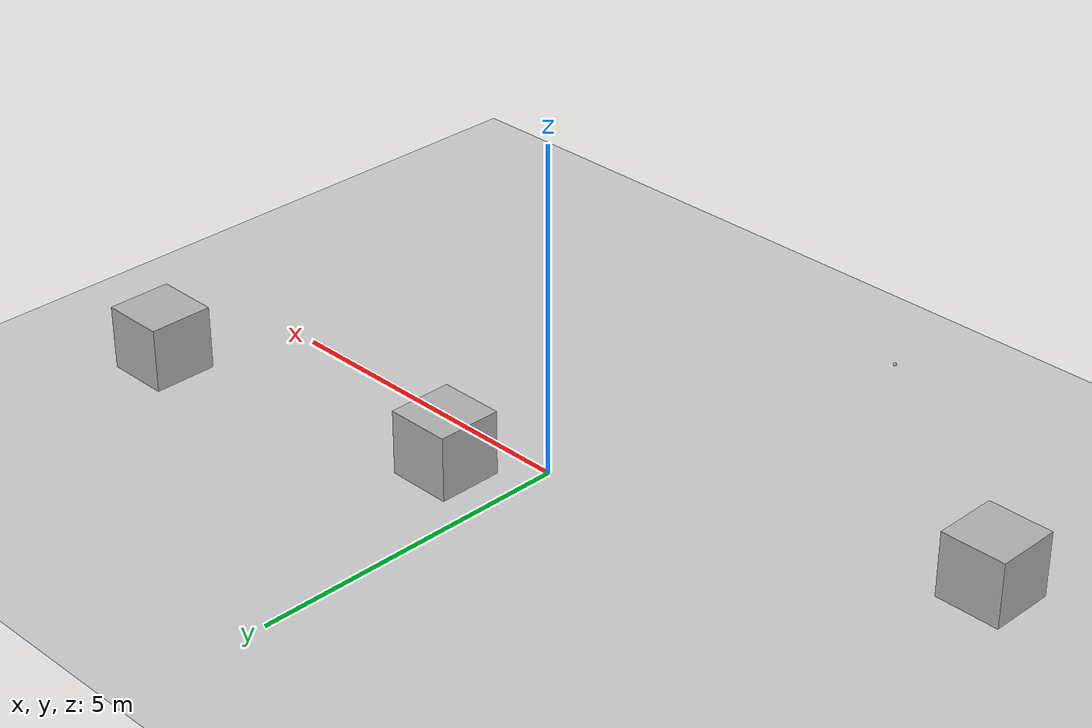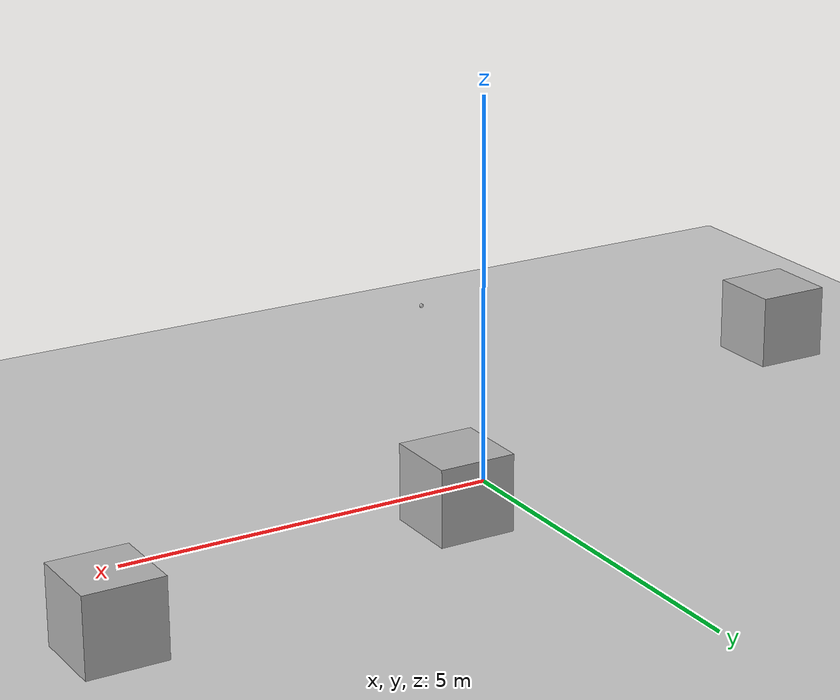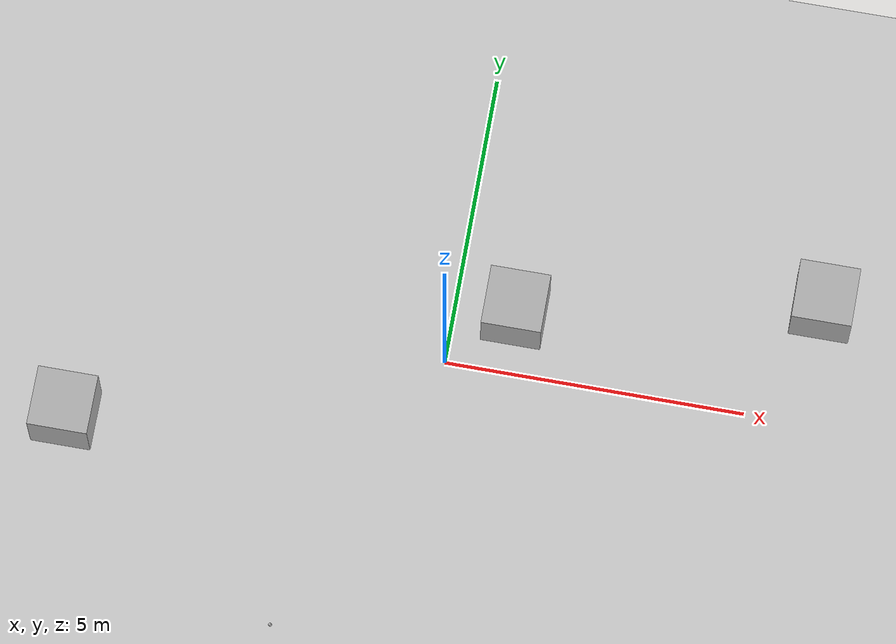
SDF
<sdf version="1.9">
 <world name="empty_world">
  <physics name="1ms" type="ignored">
   <max_step_size>0.01</max_step_size>
   <real_time_factor>1</real_time_factor>
   <real_time_update_rate>100</real_time_update_rate>
  </physics>
  <plugin name="gz::sim::systems::Physics" filename="gz-sim-physics-system"/>
  <plugin name="gz::sim::systems::UserCommands" filename="gz-sim-user-commands-system"/>
  <plugin name="gz::sim::systems::SceneBroadcaster" filename="gz-sim-scene-broadcaster-system"/>
  <plugin filename="ignition-gazebo-forcetorque-system" name="ignition::gazebo::systems::ForceTorque"/>
  <plugin filename="gz-sim-imu-system" name="gz::sim::systems::Imu"/>
  <plugin name="gz::sim::systems::Contact" filename="gz-sim-contact-system"/>
  <gravity>0 0 -9.8000000000000007</gravity>
  <magnetic_field>5.5644999999999998e-06 2.2875799999999999e-05 -4.2388400000000002e-05</magnetic_field>
  <atmosphere type="adiabatic"/>
  <scene>
   <ambient>0.400000006 0.400000006 0.400000006 1</ambient>
   <background>0.699999988 0.699999988 0.699999988 1</background>
   <shadows>true</shadows>
  </scene>
  <model name="ground_plane">
   <static>true</static>
   <link name="link">
    <collision name="collision">
     <geometry><plane><normal>0 0 1</normal><size>100 100</size></plane></geometry>
     <surface>
      <friction><ode><mu>1.0</mu><mu2>1.0</mu2></ode></friction>
      <contact><ode><kp>1e6</kp><kd>1e2</kd></ode></contact>
     </surface>
    </collision>
    <visual name="visual">
     <geometry><plane><normal>0 0 1</normal><size>100 100</size></plane></geometry>
     <material>
      <ambient>0.800000012 0.800000012 0.800000012 1</ambient>
      <diffuse>0.800000012 0.800000012 0.800000012 1</diffuse>
      <specular>0.800000012 0.800000012 0.800000012 1</specular>
     </material>
    </visual>
    <inertial>
     <mass>1</mass>
     <inertia><ixx>1</ixx><ixy>0</ixy><ixz>0</ixz><iyy>1</iyy><iyz>0</iyz><izz>1</izz></inertia>
    </inertial>
   </link>
  </model>
  <model name="box_1">
   <pose>1 1 0.5 0 0 0</pose>
   <link name="box_link">
    <inertial>
     <inertia><ixx>0.16666</ixx><ixy>0</ixy><ixz>0</ixz><iyy>0.16666</iyy><iyz>0</iyz><izz>0.16666</izz></inertia>
     <mass>1</mass>
    </inertial>
    <collision name="box_collision"><geometry><box><size>1 1 1</size></box></geometry></collision>
    <visual name="box_visual">
     <geometry><box><size>1 1 1</size></box></geometry>
     <material>
      <ambient>0.300000012 0.300000012 0.300000012 1</ambient>
      <diffuse>0.699999988 0.699999988 0.699999988 1</diffuse>
      <specular>1 1 1 1</specular>
     </material>
    </visual>
   </link>
   <static>false</static>
  </model>
  <model name="box_2">
   <pose>6 2 0.5 0 0 0</pose>
   <link name="box_link">
    <inertial>
     <inertia><ixx>0.16666</ixx><ixy>0</ixy><ixz>0</ixz><iyy>0.16666</iyy><iyz>0</iyz><izz>0.16666</izz></inertia>
     <mass>1</mass>
    </inertial>
    <collision name="box_collision"><geometry><box><size>1 1 1</size></box></geometry></collision>
    <visual name="box_visual">
     <geometry><box><size>1 1 1</size></box></geometry>
     <material>
      <ambient>0.300000012 0.300000012 0.300000012 1</ambient>
      <diffuse>0.699999988 0.699999988 0.699999988 1</diffuse>
      <specular>1 1 1 1</specular>
     </material>
    </visual>
   </link>
   <static>false</static>
  </model>
  <model name="box_4">
   <pose>-2 -5 0.5 0 0 0</pose>
   <link name="box_link">
    <inertial>
     <inertia><ixx>0.16666</ixx><ixy>0</ixy><ixz>0</ixz><iyy>0.16666</iyy><iyz>0</iyz><izz>0.16666</izz></inertia>
     <mass>1</mass>
    </inertial>
    <collision name="box_collision">
     <geometry><sphere><radius>0.03</radius></sphere></geometry>
     <surface>
      <bounce><restitution_coefficient>1</restitution_coefficient><threshold>0.01</threshold></bounce>
      <friction><ode><mu>2.0</mu><mu2>2.0</mu2></ode></friction>
     </surface>
    </collision>
    <visual name="box_visual">
     <geometry><sphere><radius>0.03</radius></sphere></geometry>
     <material>
      <ambient>0.300000012 0.300000012 0.300000012 1</ambient>
      <diffuse>0.699999988 0.699999988 0.699999988 1</diffuse>
      <specular>1 1 1 1</specular>
     </material>
    </visual>
   </link>
   <static>false</static>
  </model>
  <model name="box_5">
   <pose>-6 -2 0.5 0 0 0</pose>
   <link name="box_link">
    <inertial>
     <inertia><ixx>0.16666</ixx><ixy>0</ixy><ixz>0</ixz><iyy>0.16666</iyy><iyz>0</iyz><izz>0.16666</izz></inertia>
     <mass>1</mass>
    </inertial>
    <collision name="box_collision"><geometry><box><size>1 1 1</size></box></geometry></collision>
    <visual name="box_visual">
     <geometry><box><size>1 1 1</size></box></geometry>
     <material>
      <ambient>0.300000012 0.300000012 0.300000012 1</ambient>
      <diffuse>0.699999988 0.699999988 0.699999988 1</diffuse>
      <specular>1 1 1 1</specular>
     </material>
    </visual>
   </link>
   <static>false</static>
  </model>
  <light name="sun" type="directional">
   <pose>0 0 10 0 0 0</pose>
   <intensity>1</intensity>
   <direction>-0.5 0.10000000000000001 -0.90000000000000002</direction>
   <diffuse>0.800000012 0.800000012 0.800000012 1</diffuse>
   <specular>0.200000003 0.200000003 0.200000003 1</specular>
   <attenuation>
    <range>1000</range>
    <linear>0.01</linear>
    <constant>0.90000000000000002</constant>
    <quadratic>0.001</quadratic>
   </attenuation>
   <spot><inner_angle>0</inner_angle><outer_angle>0</outer_angle><falloff>0</falloff></spot>
  </light>
 </world>
</sdf>
